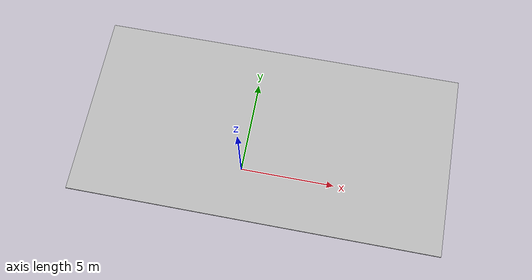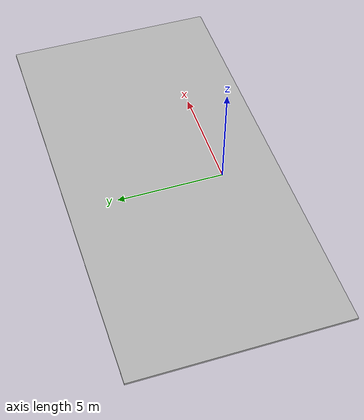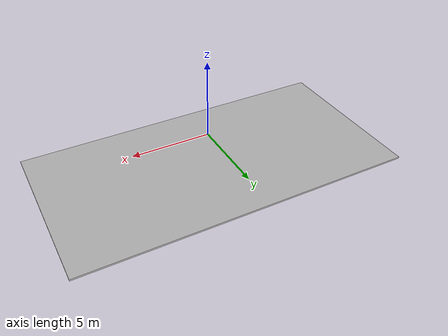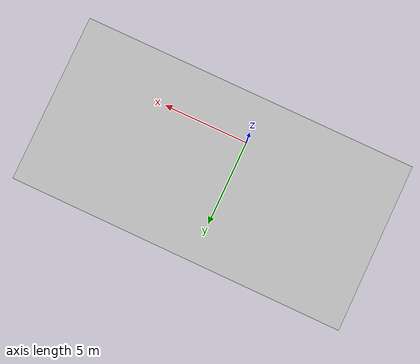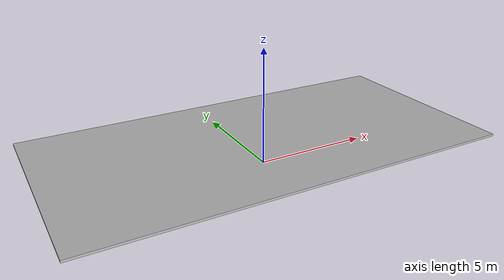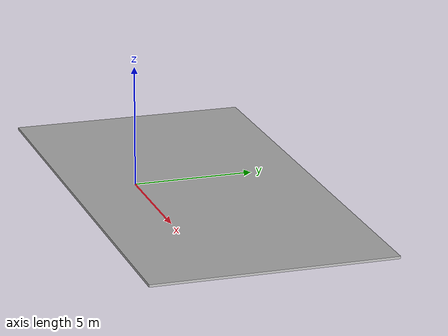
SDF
<?xml version="1.0"?>
<sdf version="1.4">
  <world name="default">
    <scene>
      <ambient>0 0 0 1</ambient>
      <shadows>0</shadows>
      <grid>0</grid>
      <background>0.7 0.7 0.7 1</background>
    </scene>
<physics type="ode">
<max_step_size>0.001</max_step_size>
<real_time_update_rate>1000</real_time_update_rate>
<ode>
<solver>
<iters>150</iters>
<sor>1.3</sor>
</solver>
</ode>
</physics>

    <include>
      <uri>model://sun</uri>
    </include>
    <model name="ground">
      <pose>1 2.3 -.1 0 0 0</pose>
      <static>1</static>
      <link name="ground">
        <collision name="ground_coll">
          <geometry>
            <box>
              <size>20 10 .1</size>
            </box>
          </geometry>
          <surface>
            <contact>
              <ode/>
            </contact>
          </surface>
        </collision>
        <visual name="ground_vis">
          <geometry>
            <box>
              <size>20 10 .1</size>
            </box>
          </geometry>
          <material>
            <script>
              <uri>file://media/materials/scripts/gazebo.material</uri>
              <name>Gazebo/Course</name>
            </script>
          </material>
        </visual>
      </link>
    </model>
  </world>
</sdf>
